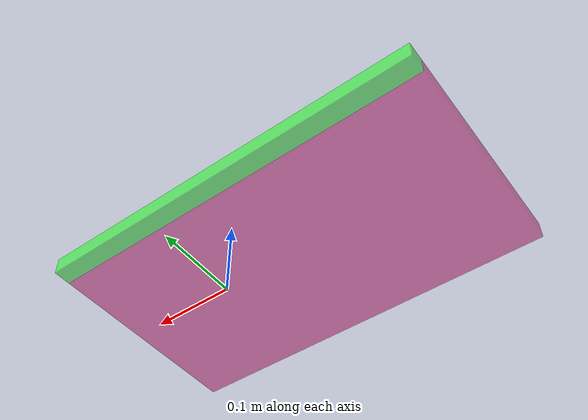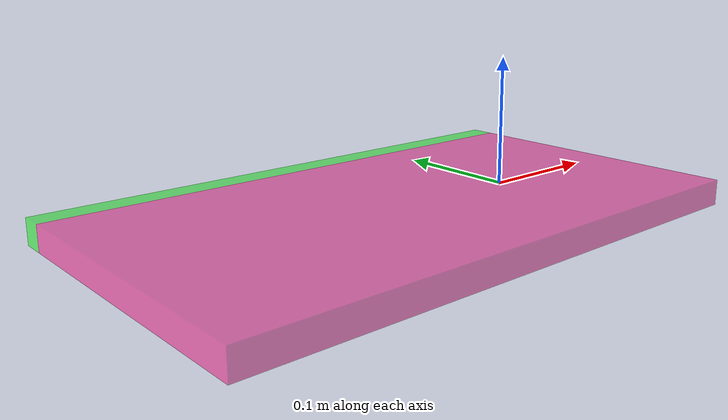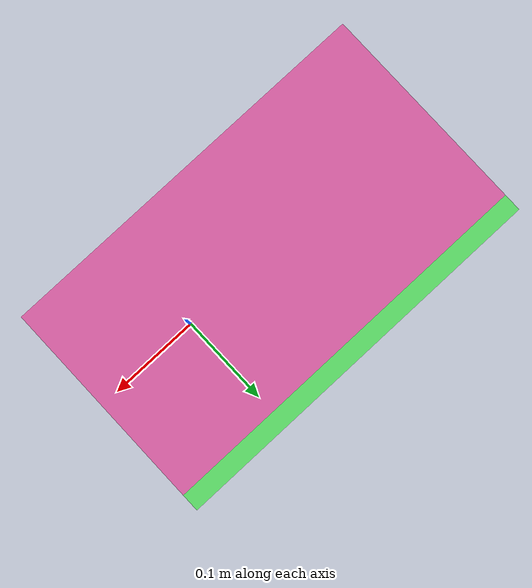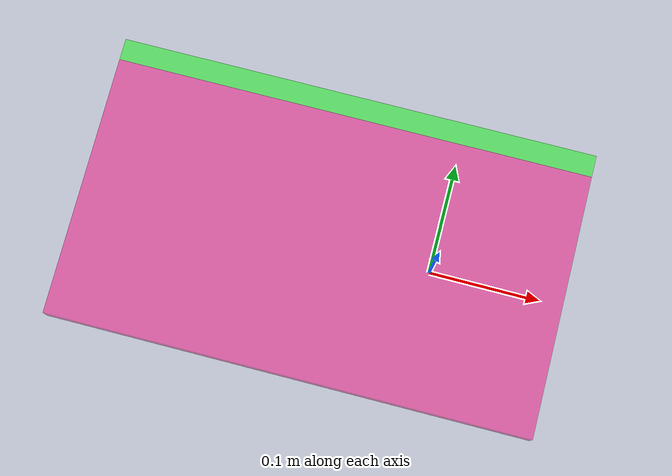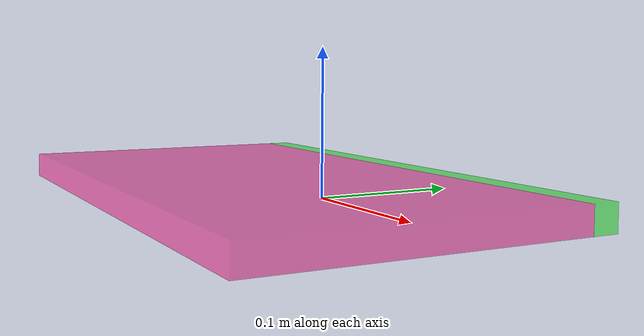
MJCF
<mujoco model="target_box">
    <worldbody>
        <body name="target_box" pos="0.0 0.0 0.0" quat="1 0 0 0">
        <geom name="target_box_a" pos="-0.1 0 -0.005" size="0.22 0.12 0.01" rgba="1 0 0.5 0.5" type="box" mass="0.01" friction="0.3 0.001 0.0001" priority="1" contype="0" conaffinity="0" />
         <geom name="target_box_b" pos="-0.1 0.13 -0.005" size="0.22 0.01 0.01" rgba="0 1 0 0.5" type="box" mass="0.05" friction="0.3 0.001 0.0001" priority="1" contype="0" conaffinity="0"/>
        </body>
    </worldbody>
</mujoco>
